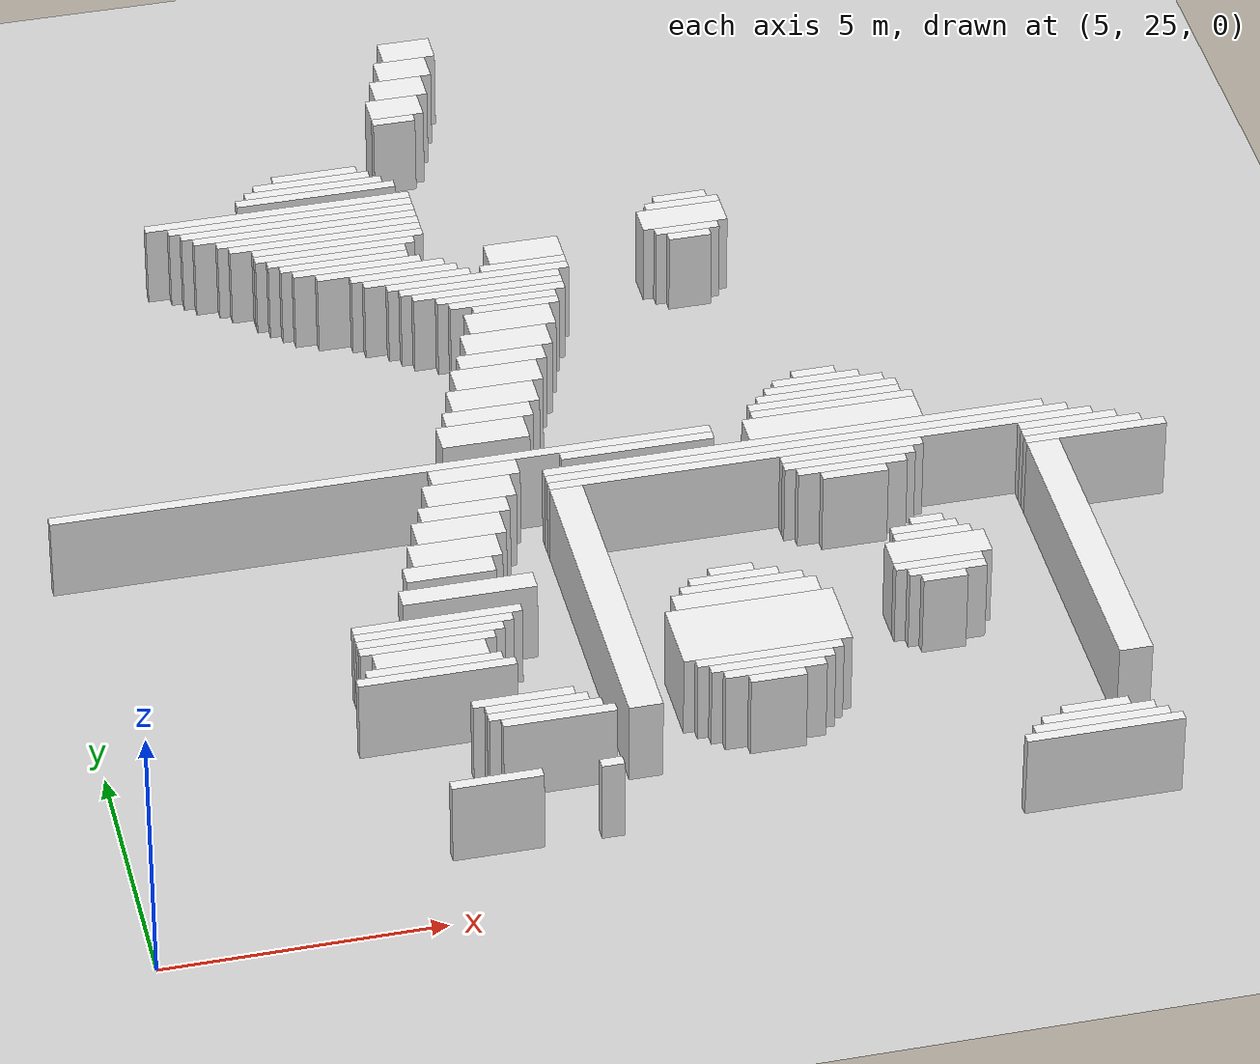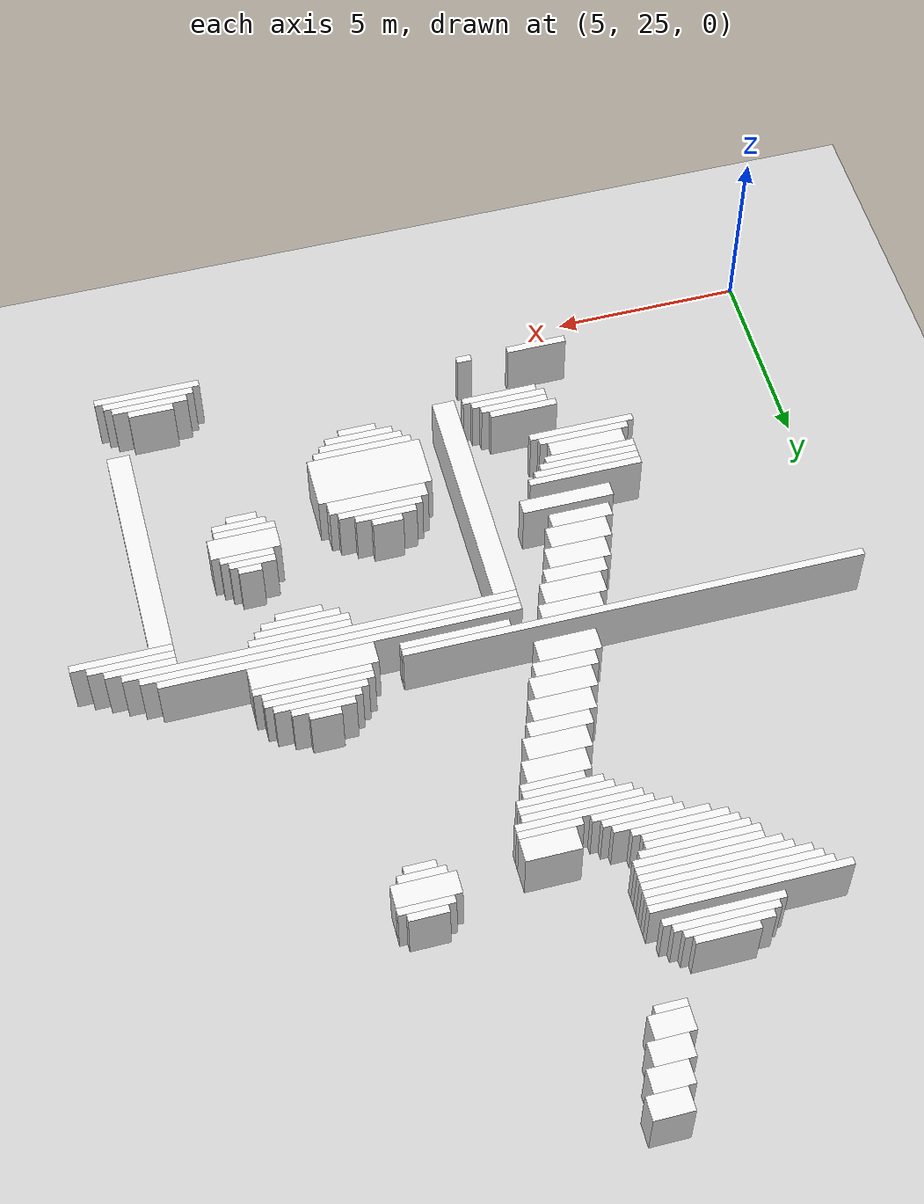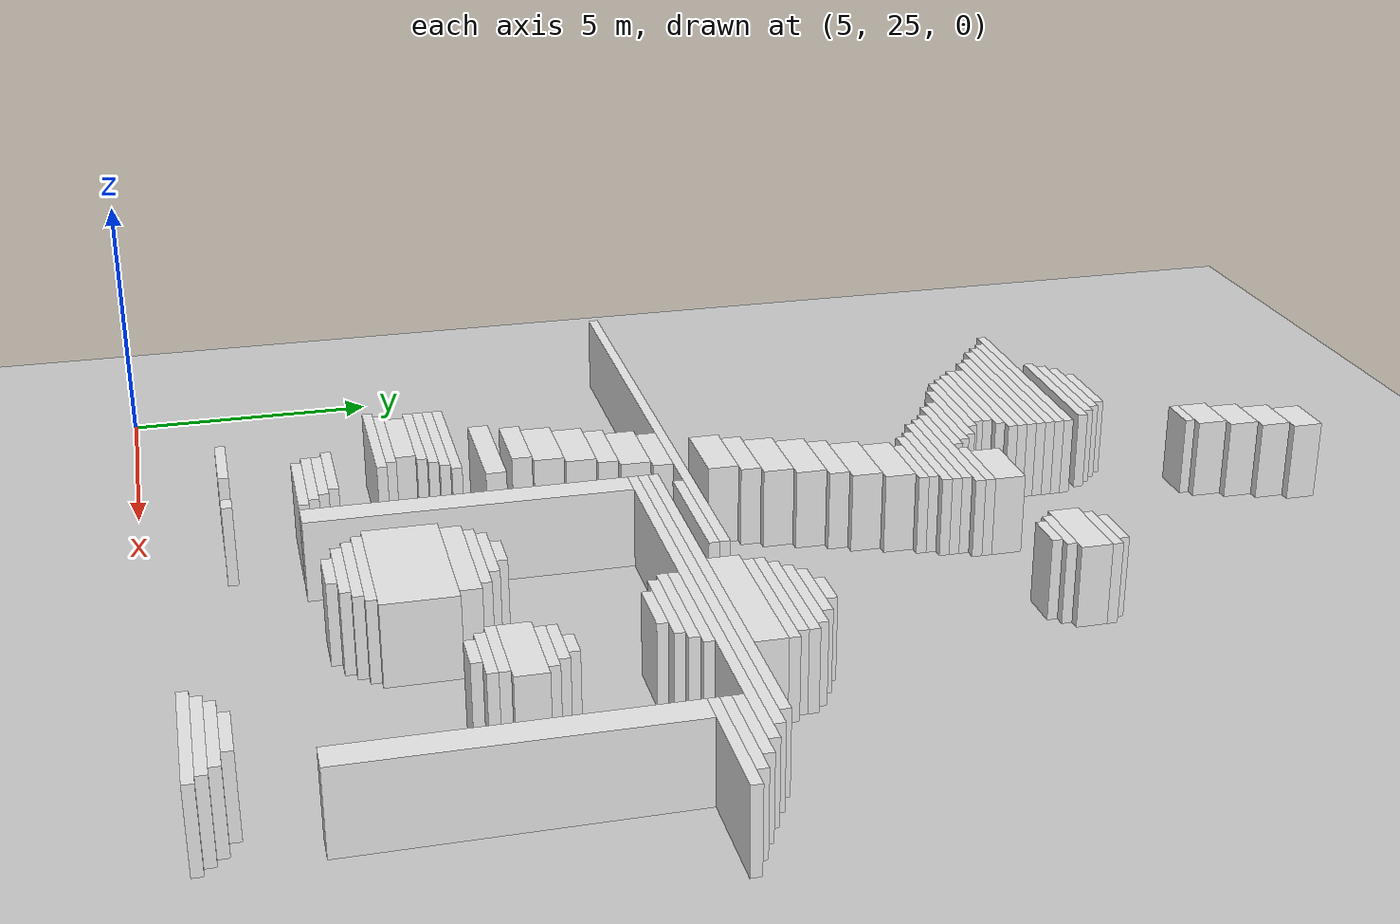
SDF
<sdf version="1.7">
 <world name="default">
  <model name="ground_plane">
   <static>1</static>
   <link name="link">
    <collision name="collision">
     <geometry><plane><normal>0 0 1</normal><size>120 120</size></plane></geometry>
    </collision>
    <visual name="visual">
     <geometry><plane><normal>0 0 1</normal><size>120 120</size></plane></geometry>
     <material>
      <script><uri>file://media/materials/scripts/gazebo.material</uri><name>Gazebo/Grey</name></script>
     </material>
    </visual>
   </link>
  </model>
  <model name="random_complex_01_model">
   <static>1</static>
   <link name="obs_14">
    <pose>14.1000 48.1000 0.8000 0 0 0</pose>
    <collision name="obs_14_col"><geometry><box><size>1.0000 0.6000 1.6000</size></box></geometry></collision>
    <visual name="obs_14_vis">
     <geometry><box><size>1.0000 0.6000 1.6000</size></box></geometry>
     <material>
      <script><uri>file://media/materials/scripts/gazebo.material</uri><name>Gazebo/White</name></script>
     </material>
    </visual>
   </link>
   <link name="obs_34">
    <pose>13.9000 47.5000 0.8000 0 0 0</pose>
    <collision name="obs_34_col"><geometry><box><size>1.0000 0.6000 1.6000</size></box></geometry></collision>
    <visual name="obs_34_vis">
     <geometry><box><size>1.0000 0.6000 1.6000</size></box></geometry>
     <material>
      <script><uri>file://media/materials/scripts/gazebo.material</uri><name>Gazebo/White</name></script>
     </material>
    </visual>
   </link>
   <link name="obs_55">
    <pose>13.7000 46.9000 0.8000 0 0 0</pose>
    <collision name="obs_55_col"><geometry><box><size>1.0000 0.6000 1.6000</size></box></geometry></collision>
    <visual name="obs_55_vis">
     <geometry><box><size>1.0000 0.6000 1.6000</size></box></geometry>
     <material>
      <script><uri>file://media/materials/scripts/gazebo.material</uri><name>Gazebo/White</name></script>
     </material>
    </visual>
   </link>
   <link name="obs_77">
    <pose>13.5000 46.3000 0.8000 0 0 0</pose>
    <collision name="obs_77_col"><geometry><box><size>1.0000 0.6000 1.6000</size></box></geometry></collision>
    <visual name="obs_77_vis">
     <geometry><box><size>1.0000 0.6000 1.6000</size></box></geometry>
     <material>
      <script><uri>file://media/materials/scripts/gazebo.material</uri><name>Gazebo/White</name></script>
     </material>
    </visual>
   </link>
   <link name="obs_95">
    <pose>13.4000 45.9000 0.8000 0 0 0</pose>
    <collision name="obs_95_col"><geometry><box><size>0.8000 0.2000 1.6000</size></box></geometry></collision>
    <visual name="obs_95_vis">
     <geometry><box><size>0.8000 0.2000 1.6000</size></box></geometry>
     <material>
      <script><uri>file://media/materials/scripts/gazebo.material</uri><name>Gazebo/White</name></script>
     </material>
    </visual>
   </link>
   <link name="obs_156">
    <pose>11.6000 44.5000 0.8000 0 0 0</pose>
    <collision name="obs_156_col"><geometry><box><size>1.6000 0.2000 1.6000</size></box></geometry></collision>
    <visual name="obs_156_vis">
     <geometry><box><size>1.6000 0.2000 1.6000</size></box></geometry>
     <material>
      <script><uri>file://media/materials/scripts/gazebo.material</uri><name>Gazebo/White</name></script>
     </material>
    </visual>
   </link>
   <link name="obs_162">
    <pose>11.5000 44.3000 0.8000 0 0 0</pose>
    <collision name="obs_162_col"><geometry><box><size>2.2000 0.2000 1.6000</size></box></geometry></collision>
    <visual name="obs_162_vis">
     <geometry><box><size>2.2000 0.2000 1.6000</size></box></geometry>
     <material>
      <script><uri>file://media/materials/scripts/gazebo.material</uri><name>Gazebo/White</name></script>
     </material>
    </visual>
   </link>
   <link name="obs_168">
    <pose>11.5000 44.1000 0.8000 0 0 0</pose>
    <collision name="obs_168_col"><geometry><box><size>2.6000 0.2000 1.6000</size></box></geometry></collision>
    <visual name="obs_168_vis">
     <geometry><box><size>2.6000 0.2000 1.6000</size></box></geometry>
     <material>
      <script><uri>file://media/materials/scripts/gazebo.material</uri><name>Gazebo/White</name></script>
     </material>
    </visual>
   </link>
   <link name="obs_176">
    <pose>11.5000 43.9000 0.8000 0 0 0</pose>
    <collision name="obs_176_col"><geometry><box><size>3.0000 0.2000 1.6000</size></box></geometry></collision>
    <visual name="obs_176_vis">
     <geometry><box><size>3.0000 0.2000 1.6000</size></box></geometry>
     <material>
      <script><uri>file://media/materials/scripts/gazebo.material</uri><name>Gazebo/White</name></script>
     </material>
    </visual>
   </link>
   <link name="obs_190">
    <pose>10.7000 43.5000 0.8000 0 0 0</pose>
    <collision name="obs_190_col"><geometry><box><size>5.0000 0.2000 1.6000</size></box></geometry></collision>
    <visual name="obs_190_vis">
     <geometry><box><size>5.0000 0.2000 1.6000</size></box></geometry>
     <material>
      <script><uri>file://media/materials/scripts/gazebo.material</uri><name>Gazebo/White</name></script>
     </material>
    </visual>
   </link>
   <link name="obs_197">
    <pose>10.9000 43.3000 0.8000 0 0 0</pose>
    <collision name="obs_197_col"><geometry><box><size>4.6000 0.2000 1.6000</size></box></geometry></collision>
    <visual name="obs_197_vis">
     <geometry><box><size>4.6000 0.2000 1.6000</size></box></geometry>
     <material>
      <script><uri>file://media/materials/scripts/gazebo.material</uri><name>Gazebo/White</name></script>
     </material>
    </visual>
   </link>
   <link name="obs_202">
    <pose>11.0000 43.1000 0.8000 0 0 0</pose>
    <collision name="obs_202_col"><geometry><box><size>4.4000 0.2000 1.6000</size></box></geometry></collision>
    <visual name="obs_202_vis">
     <geometry><box><size>4.4000 0.2000 1.6000</size></box></geometry>
     <material>
      <script><uri>file://media/materials/scripts/gazebo.material</uri><name>Gazebo/White</name></script>
     </material>
    </visual>
   </link>
   <link name="obs_209">
    <pose>11.1000 42.9000 0.8000 0 0 0</pose>
    <collision name="obs_209_col"><geometry><box><size>4.2000 0.2000 1.6000</size></box></geometry></collision>
    <visual name="obs_209_vis">
     <geometry><box><size>4.2000 0.2000 1.6000</size></box></geometry>
     <material>
      <script><uri>file://media/materials/scripts/gazebo.material</uri><name>Gazebo/White</name></script>
     </material>
    </visual>
   </link>
   <link name="obs_216">
    <pose>11.3000 42.7000 0.8000 0 0 0</pose>
    <collision name="obs_216_col"><geometry><box><size>3.8000 0.2000 1.6000</size></box></geometry></collision>
    <visual name="obs_216_vis">
     <geometry><box><size>3.8000 0.2000 1.6000</size></box></geometry>
     <material>
      <script><uri>file://media/materials/scripts/gazebo.material</uri><name>Gazebo/White</name></script>
     </material>
    </visual>
   </link>
   <link name="obs_222">
    <pose>11.4000 42.5000 0.8000 0 0 0</pose>
    <collision name="obs_222_col"><geometry><box><size>3.6000 0.2000 1.6000</size></box></geometry></collision>
    <visual name="obs_222_vis">
     <geometry><box><size>3.6000 0.2000 1.6000</size></box></geometry>
     <material>
      <script><uri>file://media/materials/scripts/gazebo.material</uri><name>Gazebo/White</name></script>
     </material>
    </visual>
   </link>
   <link name="obs_228">
    <pose>11.6000 42.3000 0.8000 0 0 0</pose>
    <collision name="obs_228_col"><geometry><box><size>3.2000 0.2000 1.6000</size></box></geometry></collision>
    <visual name="obs_228_vis">
     <geometry><box><size>3.2000 0.2000 1.6000</size></box></geometry>
     <material>
      <script><uri>file://media/materials/scripts/gazebo.material</uri><name>Gazebo/White</name></script>
     </material>
    </visual>
   </link>
   <link name="obs_229">
    <pose>18.1000 42.3000 0.8000 0 0 0</pose>
    <collision name="obs_229_col"><geometry><box><size>1.0000 0.2000 1.6000</size></box></geometry></collision>
    <visual name="obs_229_vis">
     <geometry><box><size>1.0000 0.2000 1.6000</size></box></geometry>
     <material>
      <script><uri>file://media/materials/scripts/gazebo.material</uri><name>Gazebo/White</name></script>
     </material>
    </visual>
   </link>
   <link name="obs_234">
    <pose>11.5000 42.1000 0.8000 0 0 0</pose>
    <collision name="obs_234_col"><geometry><box><size>3.0000 0.2000 1.6000</size></box></geometry></collision>
    <visual name="obs_234_vis">
     <geometry><box><size>3.0000 0.2000 1.6000</size></box></geometry>
     <material>
      <script><uri>file://media/materials/scripts/gazebo.material</uri><name>Gazebo/White</name></script>
     </material>
    </visual>
   </link>
   <link name="obs_235">
    <pose>18.1000 42.1000 0.8000 0 0 0</pose>
    <collision name="obs_235_col"><geometry><box><size>1.4000 0.2000 1.6000</size></box></geometry></collision>
    <visual name="obs_235_vis">
     <geometry><box><size>1.4000 0.2000 1.6000</size></box></geometry>
     <material>
      <script><uri>file://media/materials/scripts/gazebo.material</uri><name>Gazebo/White</name></script>
     </material>
    </visual>
   </link>
   <link name="obs_241">
    <pose>11.5000 41.9000 0.8000 0 0 0</pose>
    <collision name="obs_241_col"><geometry><box><size>2.6000 0.2000 1.6000</size></box></geometry></collision>
    <visual name="obs_241_vis">
     <geometry><box><size>2.6000 0.2000 1.6000</size></box></geometry>
     <material>
      <script><uri>file://media/materials/scripts/gazebo.material</uri><name>Gazebo/White</name></script>
     </material>
    </visual>
   </link>
   <link name="obs_245">
    <pose>11.6000 41.7000 0.8000 0 0 0</pose>
    <collision name="obs_245_col"><geometry><box><size>2.4000 0.2000 1.6000</size></box></geometry></collision>
    <visual name="obs_245_vis">
     <geometry><box><size>2.4000 0.2000 1.6000</size></box></geometry>
     <material>
      <script><uri>file://media/materials/scripts/gazebo.material</uri><name>Gazebo/White</name></script>
     </material>
    </visual>
   </link>
   <link name="obs_249">
    <pose>18.0000 41.7000 0.8000 0 0 0</pose>
    <collision name="obs_249_col"><geometry><box><size>1.6000 0.6000 1.6000</size></box></geometry></collision>
    <visual name="obs_249_vis">
     <geometry><box><size>1.6000 0.6000 1.6000</size></box></geometry>
     <material>
      <script><uri>file://media/materials/scripts/gazebo.material</uri><name>Gazebo/White</name></script>
     </material>
    </visual>
   </link>
   <link name="obs_253">
    <pose>11.8000 41.5000 0.8000 0 0 0</pose>
    <collision name="obs_253_col"><geometry><box><size>2.4000 0.2000 1.6000</size></box></geometry></collision>
    <visual name="obs_253_vis">
     <geometry><box><size>2.4000 0.2000 1.6000</size></box></geometry>
     <material>
      <script><uri>file://media/materials/scripts/gazebo.material</uri><name>Gazebo/White</name></script>
     </material>
    </visual>
   </link>
   <link name="obs_260">
    <pose>12.2000 41.3000 0.8000 0 0 0</pose>
    <collision name="obs_260_col"><geometry><box><size>2.4000 0.2000 1.6000</size></box></geometry></collision>
    <visual name="obs_260_vis">
     <geometry><box><size>2.4000 0.2000 1.6000</size></box></geometry>
     <material>
      <script><uri>file://media/materials/scripts/gazebo.material</uri><name>Gazebo/White</name></script>
     </material>
    </visual>
   </link>
   <link name="obs_261">
    <pose>18.0000 41.3000 0.8000 0 0 0</pose>
    <collision name="obs_261_col"><geometry><box><size>1.2000 0.2000 1.6000</size></box></geometry></collision>
    <visual name="obs_261_vis">
     <geometry><box><size>1.2000 0.2000 1.6000</size></box></geometry>
     <material>
      <script><uri>file://media/materials/scripts/gazebo.material</uri><name>Gazebo/White</name></script>
     </material>
    </visual>
   </link>
   <link name="obs_264">
    <pose>14.9000 41.3000 0.8000 0 0 0</pose>
    <collision name="obs_264_col"><geometry><box><size>1.4000 0.6000 1.6000</size></box></geometry></collision>
    <visual name="obs_264_vis">
     <geometry><box><size>1.4000 0.6000 1.6000</size></box></geometry>
     <material>
      <script><uri>file://media/materials/scripts/gazebo.material</uri><name>Gazebo/White</name></script>
     </material>
    </visual>
   </link>
   <link name="obs_269">
    <pose>12.6000 41.1000 0.8000 0 0 0</pose>
    <collision name="obs_269_col"><geometry><box><size>2.0000 0.2000 1.6000</size></box></geometry></collision>
    <visual name="obs_269_vis">
     <geometry><box><size>2.0000 0.2000 1.6000</size></box></geometry>
     <material>
      <script><uri>file://media/materials/scripts/gazebo.material</uri><name>Gazebo/White</name></script>
     </material>
    </visual>
   </link>
   <link name="obs_270">
    <pose>18.0000 41.1000 0.8000 0 0 0</pose>
    <collision name="obs_270_col"><geometry><box><size>0.8000 0.2000 1.6000</size></box></geometry></collision>
    <visual name="obs_270_vis">
     <geometry><box><size>0.8000 0.2000 1.6000</size></box></geometry>
     <material>
      <script><uri>file://media/materials/scripts/gazebo.material</uri><name>Gazebo/White</name></script>
     </material>
    </visual>
   </link>
   <link name="obs_275">
    <pose>12.8000 40.9000 0.8000 0 0 0</pose>
    <collision name="obs_275_col"><geometry><box><size>2.0000 0.2000 1.6000</size></box></geometry></collision>
    <visual name="obs_275_vis">
     <geometry><box><size>2.0000 0.2000 1.6000</size></box></geometry>
     <material>
      <script><uri>file://media/materials/scripts/gazebo.material</uri><name>Gazebo/White</name></script>
     </material>
    </visual>
   </link>
   <link name="obs_276">
    <pose>14.8000 40.9000 0.8000 0 0 0</pose>
    <collision name="obs_276_col"><geometry><box><size>1.6000 0.2000 1.6000</size></box></geometry></collision>
    <visual name="obs_276_vis">
     <geometry><box><size>1.6000 0.2000 1.6000</size></box></geometry>
     <material>
      <script><uri>file://media/materials/scripts/gazebo.material</uri><name>Gazebo/White</name></script>
     </material>
    </visual>
   </link>
   <link name="obs_281">
    <pose>13.9000 40.7000 0.8000 0 0 0</pose>
    <collision name="obs_281_col"><geometry><box><size>3.4000 0.2000 1.6000</size></box></geometry></collision>
    <visual name="obs_281_vis">
     <geometry><box><size>3.4000 0.2000 1.6000</size></box></geometry>
     <material>
      <script><uri>file://media/materials/scripts/gazebo.material</uri><name>Gazebo/White</name></script>
     </material>
    </visual>
   </link>
   <link name="obs_287">
    <pose>13.9000 40.5000 0.8000 0 0 0</pose>
    <collision name="obs_287_col"><geometry><box><size>3.0000 0.2000 1.6000</size></box></geometry></collision>
    <visual name="obs_287_vis">
     <geometry><box><size>3.0000 0.2000 1.6000</size></box></geometry>
     <material>
      <script><uri>file://media/materials/scripts/gazebo.material</uri><name>Gazebo/White</name></script>
     </material>
    </visual>
   </link>
   <link name="obs_295">
    <pose>14.0000 40.3000 0.8000 0 0 0</pose>
    <collision name="obs_295_col"><geometry><box><size>2.8000 0.2000 1.6000</size></box></geometry></collision>
    <visual name="obs_295_vis">
     <geometry><box><size>2.8000 0.2000 1.6000</size></box></geometry>
     <material>
      <script><uri>file://media/materials/scripts/gazebo.material</uri><name>Gazebo/White</name></script>
     </material>
    </visual>
   </link>
   <link name="obs_299">
    <pose>14.2000 40.1000 0.8000 0 0 0</pose>
    <collision name="obs_299_col"><geometry><box><size>2.4000 0.2000 1.6000</size></box></geometry></collision>
    <visual name="obs_299_vis">
     <geometry><box><size>2.4000 0.2000 1.6000</size></box></geometry>
     <material>
      <script><uri>file://media/materials/scripts/gazebo.material</uri><name>Gazebo/White</name></script>
     </material>
    </visual>
   </link>
   <link name="obs_304">
    <pose>14.2000 39.9000 0.8000 0 0 0</pose>
    <collision name="obs_304_col"><geometry><box><size>2.0000 0.2000 1.6000</size></box></geometry></collision>
    <visual name="obs_304_vis">
     <geometry><box><size>2.0000 0.2000 1.6000</size></box></geometry>
     <material>
      <script><uri>file://media/materials/scripts/gazebo.material</uri><name>Gazebo/White</name></script>
     </material>
    </visual>
   </link>
   <link name="obs_308">
    <pose>14.4000 39.7000 0.8000 0 0 0</pose>
    <collision name="obs_308_col"><geometry><box><size>1.6000 0.2000 1.6000</size></box></geometry></collision>
    <visual name="obs_308_vis">
     <geometry><box><size>1.6000 0.2000 1.6000</size></box></geometry>
     <material>
      <script><uri>file://media/materials/scripts/gazebo.material</uri><name>Gazebo/White</name></script>
     </material>
    </visual>
   </link>
   <link name="obs_313">
    <pose>14.2000 39.3000 0.8000 0 0 0</pose>
    <collision name="obs_313_col"><geometry><box><size>1.6000 0.6000 1.6000</size></box></geometry></collision>
    <visual name="obs_313_vis">
     <geometry><box><size>1.6000 0.6000 1.6000</size></box></geometry>
     <material>
      <script><uri>file://media/materials/scripts/gazebo.material</uri><name>Gazebo/White</name></script>
     </material>
    </visual>
   </link>
   <link name="obs_320">
    <pose>14.0000 38.7000 0.8000 0 0 0</pose>
    <collision name="obs_320_col"><geometry><box><size>1.6000 0.6000 1.6000</size></box></geometry></collision>
    <visual name="obs_320_vis">
     <geometry><box><size>1.6000 0.6000 1.6000</size></box></geometry>
     <material>
      <script><uri>file://media/materials/scripts/gazebo.material</uri><name>Gazebo/White</name></script>
     </material>
    </visual>
   </link>
   <link name="obs_330">
    <pose>13.8000 38.2000 0.8000 0 0 0</pose>
    <collision name="obs_330_col"><geometry><box><size>1.6000 0.4000 1.6000</size></box></geometry></collision>
    <visual name="obs_330_vis">
     <geometry><box><size>1.6000 0.4000 1.6000</size></box></geometry>
     <material>
      <script><uri>file://media/materials/scripts/gazebo.material</uri><name>Gazebo/White</name></script>
     </material>
    </visual>
   </link>
   <link name="obs_349">
    <pose>13.6000 37.7000 0.8000 0 0 0</pose>
    <collision name="obs_349_col"><geometry><box><size>1.6000 0.6000 1.6000</size></box></geometry></collision>
    <visual name="obs_349_vis">
     <geometry><box><size>1.6000 0.6000 1.6000</size></box></geometry>
     <material>
      <script><uri>file://media/materials/scripts/gazebo.material</uri><name>Gazebo/White</name></script>
     </material>
    </visual>
   </link>
   <link name="obs_372">
    <pose>13.4000 37.1000 0.8000 0 0 0</pose>
    <collision name="obs_372_col"><geometry><box><size>1.6000 0.6000 1.6000</size></box></geometry></collision>
    <visual name="obs_372_vis">
     <geometry><box><size>1.6000 0.6000 1.6000</size></box></geometry>
     <material>
      <script><uri>file://media/materials/scripts/gazebo.material</uri><name>Gazebo/White</name></script>
     </material>
    </visual>
   </link>
   <link name="obs_386">
    <pose>13.2000 36.6000 0.8000 0 0 0</pose>
    <collision name="obs_386_col"><geometry><box><size>1.6000 0.4000 1.6000</size></box></geometry></collision>
    <visual name="obs_386_vis">
     <geometry><box><size>1.6000 0.4000 1.6000</size></box></geometry>
     <material>
      <script><uri>file://media/materials/scripts/gazebo.material</uri><name>Gazebo/White</name></script>
     </material>
    </visual>
   </link>
   <link name="obs_390">
    <pose>19.2000 36.5000 0.8000 0 0 0</pose>
    <collision name="obs_390_col"><geometry><box><size>0.8000 0.2000 1.6000</size></box></geometry></collision>
    <visual name="obs_390_vis">
     <geometry><box><size>0.8000 0.2000 1.6000</size></box></geometry>
     <material>
      <script><uri>file://media/materials/scripts/gazebo.material</uri><name>Gazebo/White</name></script>
     </material>
    </visual>
   </link>
   <link name="obs_399">
    <pose>19.2000 36.3000 0.8000 0 0 0</pose>
    <collision name="obs_399_col"><geometry><box><size>1.6000 0.2000 1.6000</size></box></geometry></collision>
    <visual name="obs_399_vis">
     <geometry><box><size>1.6000 0.2000 1.6000</size></box></geometry>
     <material>
      <script><uri>file://media/materials/scripts/gazebo.material</uri><name>Gazebo/White</name></script>
     </material>
    </visual>
   </link>
   <link name="obs_410">
    <pose>19.3000 36.1000 0.8000 0 0 0</pose>
    <collision name="obs_410_col"><geometry><box><size>2.2000 0.2000 1.6000</size></box></geometry></collision>
    <visual name="obs_410_vis">
     <geometry><box><size>2.2000 0.2000 1.6000</size></box></geometry>
     <material>
      <script><uri>file://media/materials/scripts/gazebo.material</uri><name>Gazebo/White</name></script>
     </material>
    </visual>
   </link>
   <link name="obs_414">
    <pose>13.0000 36.1000 0.8000 0 0 0</pose>
    <collision name="obs_414_col"><geometry><box><size>1.6000 0.6000 1.6000</size></box></geometry></collision>
    <visual name="obs_414_vis">
     <geometry><box><size>1.6000 0.6000 1.6000</size></box></geometry>
     <material>
      <script><uri>file://media/materials/scripts/gazebo.material</uri><name>Gazebo/White</name></script>
     </material>
    </visual>
   </link>
   <link name="obs_420">
    <pose>19.3000 35.9000 0.8000 0 0 0</pose>
    <collision name="obs_420_col"><geometry><box><size>2.6000 0.2000 1.6000</size></box></geometry></collision>
    <visual name="obs_420_vis">
     <geometry><box><size>2.6000 0.2000 1.6000</size></box></geometry>
     <material>
      <script><uri>file://media/materials/scripts/gazebo.material</uri><name>Gazebo/White</name></script>
     </material>
    </visual>
   </link>
   <link name="obs_429">
    <pose>19.2000 35.7000 0.8000 0 0 0</pose>
    <collision name="obs_429_col"><geometry><box><size>2.8000 0.2000 1.6000</size></box></geometry></collision>
    <visual name="obs_429_vis">
     <geometry><box><size>2.8000 0.2000 1.6000</size></box></geometry>
     <material>
      <script><uri>file://media/materials/scripts/gazebo.material</uri><name>Gazebo/White</name></script>
     </material>
    </visual>
   </link>
   <link name="obs_434">
    <pose>19.3000 35.5000 0.8000 0 0 0</pose>
    <collision name="obs_434_col"><geometry><box><size>3.0000 0.2000 1.6000</size></box></geometry></collision>
    <visual name="obs_434_vis">
     <geometry><box><size>3.0000 0.2000 1.6000</size></box></geometry>
     <material>
      <script><uri>file://media/materials/scripts/gazebo.material</uri><name>Gazebo/White</name></script>
     </material>
    </visual>
   </link>
   <link name="obs_438">
    <pose>11.0000 35.3000 0.8000 0 0 0</pose>
    <collision name="obs_438_col"><geometry><box><size>12.0000 0.2000 1.6000</size></box></geometry></collision>
    <visual name="obs_438_vis">
     <geometry><box><size>12.0000 0.2000 1.6000</size></box></geometry>
     <material>
      <script><uri>file://media/materials/scripts/gazebo.material</uri><name>Gazebo/White</name></script>
     </material>
    </visual>
   </link>
   <link name="obs_445">
    <pose>15.6000 35.1000 0.8000 0 0 0</pose>
    <collision name="obs_445_col"><geometry><box><size>2.8000 0.2000 1.6000</size></box></geometry></collision>
    <visual name="obs_445_vis">
     <geometry><box><size>2.8000 0.2000 1.6000</size></box></geometry>
     <material>
      <script><uri>file://media/materials/scripts/gazebo.material</uri><name>Gazebo/White</name></script>
     </material>
    </visual>
   </link>
   <link name="obs_448">
    <pose>19.2000 35.1000 0.8000 0 0 0</pose>
    <collision name="obs_448_col"><geometry><box><size>3.2000 0.6000 1.6000</size></box></geometry></collision>
    <visual name="obs_448_vis">
     <geometry><box><size>3.2000 0.6000 1.6000</size></box></geometry>
     <material>
      <script><uri>file://media/materials/scripts/gazebo.material</uri><name>Gazebo/White</name></script>
     </material>
    </visual>
   </link>
   <link name="obs_449">
    <pose>12.6000 35.0000 0.8000 0 0 0</pose>
    <collision name="obs_449_col"><geometry><box><size>1.6000 0.4000 1.6000</size></box></geometry></collision>
    <visual name="obs_449_vis">
     <geometry><box><size>1.6000 0.4000 1.6000</size></box></geometry>
     <material>
      <script><uri>file://media/materials/scripts/gazebo.material</uri><name>Gazebo/White</name></script>
     </material>
    </visual>
   </link>
   <link name="obs_460">
    <pose>18.4000 34.7000 0.8000 0 0 0</pose>
    <collision name="obs_460_col"><geometry><box><size>9.2000 0.2000 1.6000</size></box></geometry></collision>
    <visual name="obs_460_vis">
     <geometry><box><size>9.2000 0.2000 1.6000</size></box></geometry>
     <material>
      <script><uri>file://media/materials/scripts/gazebo.material</uri><name>Gazebo/White</name></script>
     </material>
    </visual>
   </link>
   <link name="obs_470">
    <pose>18.6000 34.5000 0.8000 0 0 0</pose>
    <collision name="obs_470_col"><geometry><box><size>9.6000 0.2000 1.6000</size></box></geometry></collision>
    <visual name="obs_470_vis">
     <geometry><box><size>9.6000 0.2000 1.6000</size></box></geometry>
     <material>
      <script><uri>file://media/materials/scripts/gazebo.material</uri><name>Gazebo/White</name></script>
     </material>
    </visual>
   </link>
   <link name="obs_474">
    <pose>12.4000 34.5000 0.8000 0 0 0</pose>
    <collision name="obs_474_col"><geometry><box><size>1.6000 0.6000 1.6000</size></box></geometry></collision>
    <visual name="obs_474_vis">
     <geometry><box><size>1.6000 0.6000 1.6000</size></box></geometry>
     <material>
      <script><uri>file://media/materials/scripts/gazebo.material</uri><name>Gazebo/White</name></script>
     </material>
    </visual>
   </link>
   <link name="obs_481">
    <pose>18.8000 34.3000 0.8000 0 0 0</pose>
    <collision name="obs_481_col"><geometry><box><size>10.0000 0.2000 1.6000</size></box></geometry></collision>
    <visual name="obs_481_vis">
     <geometry><box><size>10.0000 0.2000 1.6000</size></box></geometry>
     <material>
      <script><uri>file://media/materials/scripts/gazebo.material</uri><name>Gazebo/White</name></script>
     </material>
    </visual>
   </link>
   <link name="obs_491">
    <pose>19.3000 34.1000 0.8000 0 0 0</pose>
    <collision name="obs_491_col"><geometry><box><size>2.6000 0.2000 1.6000</size></box></geometry></collision>
    <visual name="obs_491_vis">
     <geometry><box><size>2.6000 0.2000 1.6000</size></box></geometry>
     <material>
      <script><uri>file://media/materials/scripts/gazebo.material</uri><name>Gazebo/White</name></script>
     </material>
    </visual>
   </link>
   <link name="obs_492">
    <pose>23.3000 34.1000 0.8000 0 0 0</pose>
    <collision name="obs_492_col"><geometry><box><size>1.8000 0.2000 1.6000</size></box></geometry></collision>
    <visual name="obs_492_vis">
     <geometry><box><size>1.8000 0.2000 1.6000</size></box></geometry>
     <material>
      <script><uri>file://media/materials/scripts/gazebo.material</uri><name>Gazebo/White</name></script>
     </material>
    </visual>
   </link>
   <link name="obs_497">
    <pose>12.2000 34.0000 0.8000 0 0 0</pose>
    <collision name="obs_497_col"><geometry><box><size>1.6000 0.4000 1.6000</size></box></geometry></collision>
    <visual name="obs_497_vis">
     <geometry><box><size>1.6000 0.4000 1.6000</size></box></geometry>
     <material>
      <script><uri>file://media/materials/scripts/gazebo.material</uri><name>Gazebo/White</name></script>
     </material>
    </visual>
   </link>
   <link name="obs_499">
    <pose>19.2000 33.9000 0.8000 0 0 0</pose>
    <collision name="obs_499_col"><geometry><box><size>2.4000 0.2000 1.6000</size></box></geometry></collision>
    <visual name="obs_499_vis">
     <geometry><box><size>2.4000 0.2000 1.6000</size></box></geometry>
     <material>
      <script><uri>file://media/materials/scripts/gazebo.material</uri><name>Gazebo/White</name></script>
     </material>
    </visual>
   </link>
   <link name="obs_500">
    <pose>23.5000 33.9000 0.8000 0 0 0</pose>
    <collision name="obs_500_col"><geometry><box><size>2.2000 0.2000 1.6000</size></box></geometry></collision>
    <visual name="obs_500_vis">
     <geometry><box><size>2.2000 0.2000 1.6000</size></box></geometry>
     <material>
      <script><uri>file://media/materials/scripts/gazebo.material</uri><name>Gazebo/White</name></script>
     </material>
    </visual>
   </link>
   <link name="obs_507">
    <pose>19.2000 33.7000 0.8000 0 0 0</pose>
    <collision name="obs_507_col"><geometry><box><size>2.0000 0.2000 1.6000</size></box></geometry></collision>
    <visual name="obs_507_vis">
     <geometry><box><size>2.0000 0.2000 1.6000</size></box></geometry>
     <material>
      <script><uri>file://media/materials/scripts/gazebo.material</uri><name>Gazebo/White</name></script>
     </material>
    </visual>
   </link>
   <link name="obs_508">
    <pose>23.7000 33.7000 0.8000 0 0 0</pose>
    <collision name="obs_508_col"><geometry><box><size>2.6000 0.2000 1.6000</size></box></geometry></collision>
    <visual name="obs_508_vis">
     <geometry><box><size>2.6000 0.2000 1.6000</size></box></geometry>
     <material>
      <script><uri>file://media/materials/scripts/gazebo.material</uri><name>Gazebo/White</name></script>
     </material>
    </visual>
   </link>
   <link name="obs_515">
    <pose>19.2000 33.5000 0.8000 0 0 0</pose>
    <collision name="obs_515_col"><geometry><box><size>1.2000 0.2000 1.6000</size></box></geometry></collision>
    <visual name="obs_515_vis">
     <geometry><box><size>1.2000 0.2000 1.6000</size></box></geometry>
     <material>
      <script><uri>file://media/materials/scripts/gazebo.material</uri><name>Gazebo/White</name></script>
     </material>
    </visual>
   </link>
   <link name="obs_522">
    <pose>12.0000 33.5000 0.8000 0 0 0</pose>
    <collision name="obs_522_col"><geometry><box><size>1.6000 0.6000 1.6000</size></box></geometry></collision>
    <visual name="obs_522_vis">
     <geometry><box><size>1.6000 0.6000 1.6000</size></box></geometry>
     <material>
      <script><uri>file://media/materials/scripts/gazebo.material</uri><name>Gazebo/White</name></script>
     </material>
    </visual>
   </link>
   <link name="obs_543">
    <pose>11.8000 32.9000 0.8000 0 0 0</pose>
    <collision name="obs_543_col"><geometry><box><size>1.6000 0.6000 1.6000</size></box></geometry></collision>
    <visual name="obs_543_vis">
     <geometry><box><size>1.6000 0.6000 1.6000</size></box></geometry>
     <material>
      <script><uri>file://media/materials/scripts/gazebo.material</uri><name>Gazebo/White</name></script>
     </material>
    </visual>
   </link>
   <link name="obs_561">
    <pose>11.6000 32.4000 0.8000 0 0 0</pose>
    <collision name="obs_561_col"><geometry><box><size>1.6000 0.4000 1.6000</size></box></geometry></collision>
    <visual name="obs_561_vis">
     <geometry><box><size>1.6000 0.4000 1.6000</size></box></geometry>
     <material>
      <script><uri>file://media/materials/scripts/gazebo.material</uri><name>Gazebo/White</name></script>
     </material>
    </visual>
   </link>
   <link name="obs_584">
    <pose>20.1000 31.9000 0.8000 0 0 0</pose>
    <collision name="obs_584_col"><geometry><box><size>0.6000 0.2000 1.6000</size></box></geometry></collision>
    <visual name="obs_584_vis">
     <geometry><box><size>0.6000 0.2000 1.6000</size></box></geometry>
     <material>
      <script><uri>file://media/materials/scripts/gazebo.material</uri><name>Gazebo/White</name></script>
     </material>
    </visual>
   </link>
   <link name="obs_590">
    <pose>11.8000 31.8000 0.8000 0 0 0</pose>
    <collision name="obs_590_col"><geometry><box><size>2.4000 0.4000 1.6000</size></box></geometry></collision>
    <visual name="obs_590_vis">
     <geometry><box><size>2.4000 0.4000 1.6000</size></box></geometry>
     <material>
      <script><uri>file://media/materials/scripts/gazebo.material</uri><name>Gazebo/White</name></script>
     </material>
    </visual>
   </link>
   <link name="obs_595">
    <pose>20.0000 31.7000 0.8000 0 0 0</pose>
    <collision name="obs_595_col"><geometry><box><size>1.2000 0.2000 1.6000</size></box></geometry></collision>
    <visual name="obs_595_vis">
     <geometry><box><size>1.2000 0.2000 1.6000</size></box></geometry>
     <material>
      <script><uri>file://media/materials/scripts/gazebo.material</uri><name>Gazebo/White</name></script>
     </material>
    </visual>
   </link>
   <link name="obs_603">
    <pose>20.1000 31.5000 0.8000 0 0 0</pose>
    <collision name="obs_603_col"><geometry><box><size>1.4000 0.2000 1.6000</size></box></geometry></collision>
    <visual name="obs_603_vis">
     <geometry><box><size>1.4000 0.2000 1.6000</size></box></geometry>
     <material>
      <script><uri>file://media/materials/scripts/gazebo.material</uri><name>Gazebo/White</name></script>
     </material>
    </visual>
   </link>
   <link name="obs_609">
    <pose>16.4000 31.3000 0.8000 0 0 0</pose>
    <collision name="obs_609_col"><geometry><box><size>0.8000 0.2000 1.6000</size></box></geometry></collision>
    <visual name="obs_609_vis">
     <geometry><box><size>0.8000 0.2000 1.6000</size></box></geometry>
     <material>
      <script><uri>file://media/materials/scripts/gazebo.material</uri><name>Gazebo/White</name></script>
     </material>
    </visual>
   </link>
   <link name="obs_614">
    <pose>11.1000 31.1000 0.8000 0 0 0</pose>
    <collision name="obs_614_col"><geometry><box><size>3.0000 0.2000 1.6000</size></box></geometry></collision>
    <visual name="obs_614_vis">
     <geometry><box><size>3.0000 0.2000 1.6000</size></box></geometry>
     <material>
      <script><uri>file://media/materials/scripts/gazebo.material</uri><name>Gazebo/White</name></script>
     </material>
    </visual>
   </link>
   <link name="obs_615">
    <pose>16.4000 31.1000 0.8000 0 0 0</pose>
    <collision name="obs_615_col"><geometry><box><size>1.6000 0.2000 1.6000</size></box></geometry></collision>
    <visual name="obs_615_vis">
     <geometry><box><size>1.6000 0.2000 1.6000</size></box></geometry>
     <material>
      <script><uri>file://media/materials/scripts/gazebo.material</uri><name>Gazebo/White</name></script>
     </material>
    </visual>
   </link>
   <link name="obs_617">
    <pose>20.1000 31.1000 0.8000 0 0 0</pose>
    <collision name="obs_617_col"><geometry><box><size>1.8000 0.6000 1.6000</size></box></geometry></collision>
    <visual name="obs_617_vis">
     <geometry><box><size>1.8000 0.6000 1.6000</size></box></geometry>
     <material>
      <script><uri>file://media/materials/scripts/gazebo.material</uri><name>Gazebo/White</name></script>
     </material>
    </visual>
   </link>
   <link name="obs_621">
    <pose>11.0000 30.9000 0.8000 0 0 0</pose>
    <collision name="obs_621_col"><geometry><box><size>2.8000 0.2000 1.6000</size></box></geometry></collision>
    <visual name="obs_621_vis">
     <geometry><box><size>2.8000 0.2000 1.6000</size></box></geometry>
     <material>
      <script><uri>file://media/materials/scripts/gazebo.material</uri><name>Gazebo/White</name></script>
     </material>
    </visual>
   </link>
   <link name="obs_622">
    <pose>16.5000 30.9000 0.8000 0 0 0</pose>
    <collision name="obs_622_col"><geometry><box><size>2.2000 0.2000 1.6000</size></box></geometry></collision>
    <visual name="obs_622_vis">
     <geometry><box><size>2.2000 0.2000 1.6000</size></box></geometry>
     <material>
      <script><uri>file://media/materials/scripts/gazebo.material</uri><name>Gazebo/White</name></script>
     </material>
    </visual>
   </link>
   <link name="obs_625">
    <pose>10.9000 30.7000 0.8000 0 0 0</pose>
    <collision name="obs_625_col"><geometry><box><size>2.6000 0.2000 1.6000</size></box></geometry></collision>
    <visual name="obs_625_vis">
     <geometry><box><size>2.6000 0.2000 1.6000</size></box></geometry>
     <material>
      <script><uri>file://media/materials/scripts/gazebo.material</uri><name>Gazebo/White</name></script>
     </material>
    </visual>
   </link>
   <link name="obs_626">
    <pose>20.0000 30.7000 0.8000 0 0 0</pose>
    <collision name="obs_626_col"><geometry><box><size>1.6000 0.2000 1.6000</size></box></geometry></collision>
    <visual name="obs_626_vis">
     <geometry><box><size>1.6000 0.2000 1.6000</size></box></geometry>
     <material>
      <script><uri>file://media/materials/scripts/gazebo.material</uri><name>Gazebo/White</name></script>
     </material>
    </visual>
   </link>
   <link name="obs_628">
    <pose>16.5000 30.6000 0.8000 0 0 0</pose>
    <collision name="obs_628_col"><geometry><box><size>2.6000 0.4000 1.6000</size></box></geometry></collision>
    <visual name="obs_628_vis">
     <geometry><box><size>2.6000 0.4000 1.6000</size></box></geometry>
     <material>
      <script><uri>file://media/materials/scripts/gazebo.material</uri><name>Gazebo/White</name></script>
     </material>
    </visual>
   </link>
   <link name="obs_629">
    <pose>10.8000 30.5000 0.8000 0 0 0</pose>
    <collision name="obs_629_col"><geometry><box><size>2.4000 0.2000 1.6000</size></box></geometry></collision>
    <visual name="obs_629_vis">
     <geometry><box><size>2.4000 0.2000 1.6000</size></box></geometry>
     <material>
      <script><uri>file://media/materials/scripts/gazebo.material</uri><name>Gazebo/White</name></script>
     </material>
    </visual>
   </link>
   <link name="obs_630">
    <pose>20.1000 30.5000 0.8000 0 0 0</pose>
    <collision name="obs_630_col"><geometry><box><size>1.4000 0.2000 1.6000</size></box></geometry></collision>
    <visual name="obs_630_vis">
     <geometry><box><size>1.4000 0.2000 1.6000</size></box></geometry>
     <material>
      <script><uri>file://media/materials/scripts/gazebo.material</uri><name>Gazebo/White</name></script>
     </material>
    </visual>
   </link>
   <link name="obs_635">
    <pose>20.0000 30.3000 0.8000 0 0 0</pose>
    <collision name="obs_635_col"><geometry><box><size>0.8000 0.2000 1.6000</size></box></geometry></collision>
    <visual name="obs_635_vis">
     <geometry><box><size>0.8000 0.2000 1.6000</size></box></geometry>
     <material>
      <script><uri>file://media/materials/scripts/gazebo.material</uri><name>Gazebo/White</name></script>
     </material>
    </visual>
   </link>
   <link name="obs_638">
    <pose>10.8000 30.2000 0.8000 0 0 0</pose>
    <collision name="obs_638_col"><geometry><box><size>2.0000 0.4000 1.6000</size></box></geometry></collision>
    <visual name="obs_638_vis">
     <geometry><box><size>2.0000 0.4000 1.6000</size></box></geometry>
     <material>
      <script><uri>file://media/materials/scripts/gazebo.material</uri><name>Gazebo/White</name></script>
     </material>
    </visual>
   </link>
   <link name="obs_646">
    <pose>10.8000 29.9000 0.8000 0 0 0</pose>
    <collision name="obs_646_col"><geometry><box><size>2.4000 0.2000 1.6000</size></box></geometry></collision>
    <visual name="obs_646_vis">
     <geometry><box><size>2.4000 0.2000 1.6000</size></box></geometry>
     <material>
      <script><uri>file://media/materials/scripts/gazebo.material</uri><name>Gazebo/White</name></script>
     </material>
    </visual>
   </link>
   <link name="obs_654">
    <pose>10.8000 29.7000 0.8000 0 0 0</pose>
    <collision name="obs_654_col"><geometry><box><size>2.8000 0.2000 1.6000</size></box></geometry></collision>
    <visual name="obs_654_vis">
     <geometry><box><size>2.8000 0.2000 1.6000</size></box></geometry>
     <material>
      <script><uri>file://media/materials/scripts/gazebo.material</uri><name>Gazebo/White</name></script>
     </material>
    </visual>
   </link>
   <link name="obs_672">
    <pose>16.5000 29.7000 0.8000 0 0 0</pose>
    <collision name="obs_672_col"><geometry><box><size>3.0000 1.4000 1.6000</size></box></geometry></collision>
    <visual name="obs_672_vis">
     <geometry><box><size>3.0000 1.4000 1.6000</size></box></geometry>
     <material>
      <script><uri>file://media/materials/scripts/gazebo.material</uri><name>Gazebo/White</name></script>
     </material>
    </visual>
   </link>
   <link name="obs_686">
    <pose>16.5000 28.9000 0.8000 0 0 0</pose>
    <collision name="obs_686_col"><geometry><box><size>2.6000 0.2000 1.6000</size></box></geometry></collision>
    <visual name="obs_686_vis">
     <geometry><box><size>2.6000 0.2000 1.6000</size></box></geometry>
     <material>
      <script><uri>file://media/materials/scripts/gazebo.material</uri><name>Gazebo/White</name></script>
     </material>
    </visual>
   </link>
   <link name="obs_693">
    <pose>12.1000 28.7000 0.8000 0 0 0</pose>
    <collision name="obs_693_col"><geometry><box><size>1.8000 0.2000 1.6000</size></box></geometry></collision>
    <visual name="obs_693_vis">
     <geometry><box><size>1.8000 0.2000 1.6000</size></box></geometry>
     <material>
      <script><uri>file://media/materials/scripts/gazebo.material</uri><name>Gazebo/White</name></script>
     </material>
    </visual>
   </link>
   <link name="obs_694">
    <pose>16.5000 28.7000 0.8000 0 0 0</pose>
    <collision name="obs_694_col"><geometry><box><size>2.2000 0.2000 1.6000</size></box></geometry></collision>
    <visual name="obs_694_vis">
     <geometry><box><size>2.2000 0.2000 1.6000</size></box></geometry>
     <material>
      <script><uri>file://media/materials/scripts/gazebo.material</uri><name>Gazebo/White</name></script>
     </material>
    </visual>
   </link>
   <link name="obs_702">
    <pose>12.3000 28.5000 0.8000 0 0 0</pose>
    <collision name="obs_702_col"><geometry><box><size>1.8000 0.2000 1.6000</size></box></geometry></collision>
    <visual name="obs_702_vis">
     <geometry><box><size>1.8000 0.2000 1.6000</size></box></geometry>
     <material>
      <script><uri>file://media/materials/scripts/gazebo.material</uri><name>Gazebo/White</name></script>
     </material>
    </visual>
   </link>
   <link name="obs_703">
    <pose>16.5000 28.5000 0.8000 0 0 0</pose>
    <collision name="obs_703_col"><geometry><box><size>1.8000 0.2000 1.6000</size></box></geometry></collision>
    <visual name="obs_703_vis">
     <geometry><box><size>1.8000 0.2000 1.6000</size></box></geometry>
     <material>
      <script><uri>file://media/materials/scripts/gazebo.material</uri><name>Gazebo/White</name></script>
     </material>
    </visual>
   </link>
   <link name="obs_714">
    <pose>12.4000 28.3000 0.8000 0 0 0</pose>
    <collision name="obs_714_col"><geometry><box><size>2.0000 0.2000 1.6000</size></box></geometry></collision>
    <visual name="obs_714_vis">
     <geometry><box><size>2.0000 0.2000 1.6000</size></box></geometry>
     <material>
      <script><uri>file://media/materials/scripts/gazebo.material</uri><name>Gazebo/White</name></script>
     </material>
    </visual>
   </link>
   <link name="obs_715">
    <pose>16.5000 28.3000 0.8000 0 0 0</pose>
    <collision name="obs_715_col"><geometry><box><size>1.0000 0.2000 1.6000</size></box></geometry></collision>
    <visual name="obs_715_vis">
     <geometry><box><size>1.0000 0.2000 1.6000</size></box></geometry>
     <material>
      <script><uri>file://media/materials/scripts/gazebo.material</uri><name>Gazebo/White</name></script>
     </material>
    </visual>
   </link>
   <link name="obs_717">
    <pose>14.1000 31.1000 0.8000 0 0 0</pose>
    <collision name="obs_717_col"><geometry><box><size>0.6000 6.2000 1.6000</size></box></geometry></collision>
    <visual name="obs_717_vis">
     <geometry><box><size>0.6000 6.2000 1.6000</size></box></geometry>
     <material>
      <script><uri>file://media/materials/scripts/gazebo.material</uri><name>Gazebo/White</name></script>
     </material>
    </visual>
   </link>
   <link name="obs_730">
    <pose>12.6000 28.1000 0.8000 0 0 0</pose>
    <collision name="obs_730_col"><geometry><box><size>2.0000 0.2000 1.6000</size></box></geometry></collision>
    <visual name="obs_730_vis">
     <geometry><box><size>2.0000 0.2000 1.6000</size></box></geometry>
     <material>
      <script><uri>file://media/materials/scripts/gazebo.material</uri><name>Gazebo/White</name></script>
     </material>
    </visual>
   </link>
   <link name="obs_737">
    <pose>22.7000 30.6000 0.8000 0 0 0</pose>
    <collision name="obs_737_col"><geometry><box><size>0.6000 6.0000 1.6000</size></box></geometry></collision>
    <visual name="obs_737_vis">
     <geometry><box><size>0.6000 6.0000 1.6000</size></box></geometry>
     <material>
      <script><uri>file://media/materials/scripts/gazebo.material</uri><name>Gazebo/White</name></script>
     </material>
    </visual>
   </link>
   <link name="obs_773">
    <pose>11.2000 26.7000 0.8000 0 0 0</pose>
    <collision name="obs_773_col"><geometry><box><size>1.6000 0.2000 1.6000</size></box></geometry></collision>
    <visual name="obs_773_vis">
     <geometry><box><size>1.6000 0.2000 1.6000</size></box></geometry>
     <material>
      <script><uri>file://media/materials/scripts/gazebo.material</uri><name>Gazebo/White</name></script>
     </material>
    </visual>
   </link>
   <link name="obs_774">
    <pose>13.2000 26.7000 0.8000 0 0 0</pose>
    <collision name="obs_774_col"><geometry><box><size>0.4000 0.2000 1.6000</size></box></geometry></collision>
    <visual name="obs_774_vis">
     <geometry><box><size>0.4000 0.2000 1.6000</size></box></geometry>
     <material>
      <script><uri>file://media/materials/scripts/gazebo.material</uri><name>Gazebo/White</name></script>
     </material>
    </visual>
   </link>
   <link name="obs_786">
    <pose>21.6000 26.3000 0.8000 0 0 0</pose>
    <collision name="obs_786_col"><geometry><box><size>1.2000 0.2000 1.6000</size></box></geometry></collision>
    <visual name="obs_786_vis">
     <geometry><box><size>1.2000 0.2000 1.6000</size></box></geometry>
     <material>
      <script><uri>file://media/materials/scripts/gazebo.material</uri><name>Gazebo/White</name></script>
     </material>
    </visual>
   </link>
   <link name="obs_794">
    <pose>21.6000 26.1000 0.8000 0 0 0</pose>
    <collision name="obs_794_col"><geometry><box><size>2.0000 0.2000 1.6000</size></box></geometry></collision>
    <visual name="obs_794_vis">
     <geometry><box><size>2.0000 0.2000 1.6000</size></box></geometry>
     <material>
      <script><uri>file://media/materials/scripts/gazebo.material</uri><name>Gazebo/White</name></script>
     </material>
    </visual>
   </link>
   <link name="obs_801">
    <pose>21.6000 25.9000 0.8000 0 0 0</pose>
    <collision name="obs_801_col"><geometry><box><size>2.4000 0.2000 1.6000</size></box></geometry></collision>
    <visual name="obs_801_vis">
     <geometry><box><size>2.4000 0.2000 1.6000</size></box></geometry>
     <material>
      <script><uri>file://media/materials/scripts/gazebo.material</uri><name>Gazebo/White</name></script>
     </material>
    </visual>
   </link>
   <link name="obs_808">
    <pose>21.6000 25.7000 0.8000 0 0 0</pose>
    <collision name="obs_808_col"><geometry><box><size>2.8000 0.2000 1.6000</size></box></geometry></collision>
    <visual name="obs_808_vis">
     <geometry><box><size>2.8000 0.2000 1.6000</size></box></geometry>
     <material>
      <script><uri>file://media/materials/scripts/gazebo.material</uri><name>Gazebo/White</name></script>
     </material>
    </visual>
   </link>
  </model>
 </world>
</sdf>
